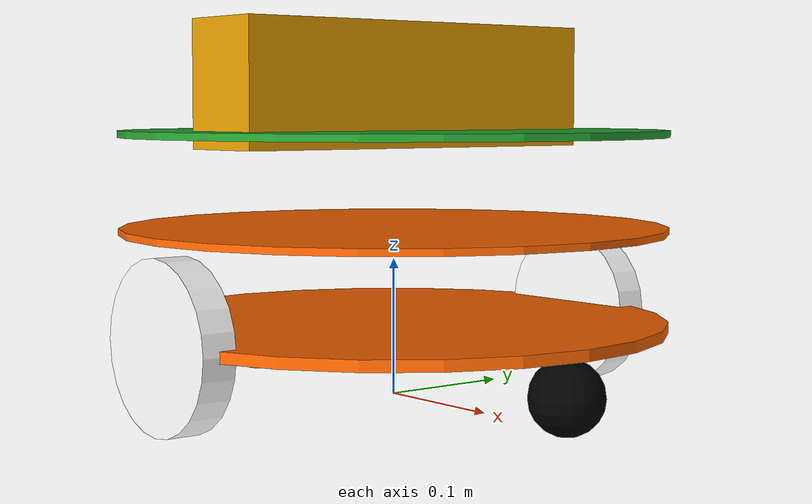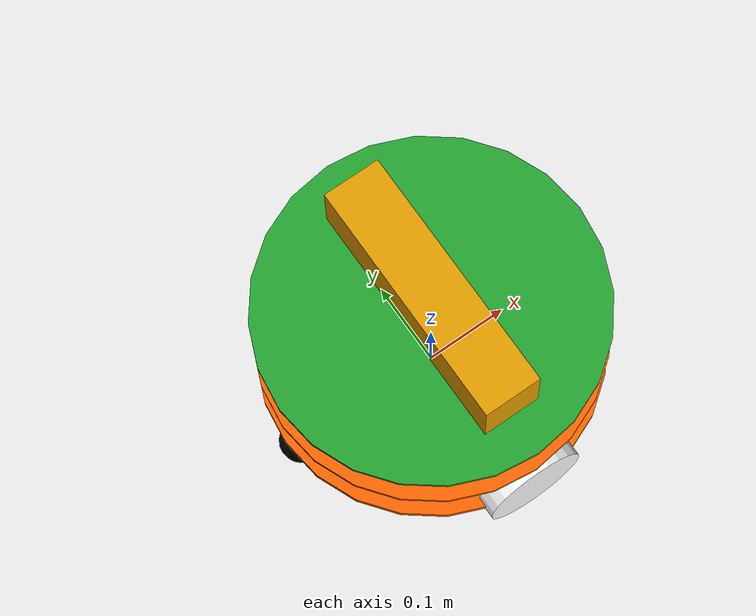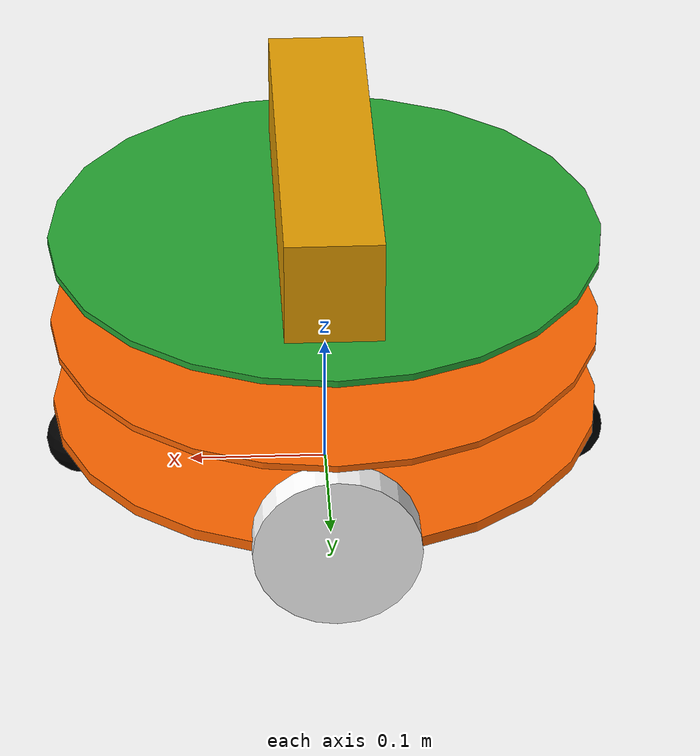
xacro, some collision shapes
<?xml version="1.0"?>
<robot name="arm" xmlns:xacro="http://www.ros.org/wiki/xacro">

    <xacro:include filename="$(find mbot_description)/urdf/xacro/mbot_base.xacro" />
    <xacro:include filename="$(find mbot_description)/urdf/xacro/sensors/kinect.xacro" />

    <xacro:property name="kinect_offset_x" value="0.00" />
    <xacro:property name="kinect_offset_y" value="0" />
    <xacro:property name="kinect_offset_z" value="0.035" />

    <mbot_base/>

<!-- Kinect -->
 <joint name="kinect_frame_joint" type="fixed">
  <origin xyz="${kinect_offset_x} ${kinect_offset_y} ${kinect_offset_z}" rpy="0 0 0" />
  <parent link="plate_2_link"/>
  <child link="camera_link"/>
  </joint>
  <xacro:kinect_camera prefix="camera"/>

</robot>

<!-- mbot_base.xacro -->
<robot name="mbot" xmlns:xacro="http://www.ros.org/wiki/xacro">

    <!-- PROPERTY LIST -->
    <xacro:property name="M_PI" value="3.1415926"/>
    <xacro:property name="base_radius" value="0.20"/>
    <xacro:property name="base_length" value="0.008"/>

    <xacro:property name="wheel_radius" value="0.06"/>
    <xacro:property name="wheel_length" value="0.025"/>
    <xacro:property name="wheel_joint_y" value="0.19"/>
    <xacro:property name="wheel_joint_z" value="0.000"/>

    <xacro:property name="caster_radius" value="0.026"/> <!-- wheel_radius - ( base_length/2 - wheel_joint_z) -->
    <xacro:property name="caster_joint_x" value="0.18"/>
    <xacro:property name="plate_height" value="0.07"/>
    <xacro:property name="base_link_radius" value="0.20"/>
 	<xacro:property name="base_link_length" value="0.005"/>

	<xacro:property name="motor_radius" value="0.02"/>
    	<xacro:property name="motor_length" value="0.08"/>
         	<xacro:property name="motor_x" value="-0.055"/>
    	<xacro:property name="motor_y" value="0.075"/>
            	<xacro:property name="standoff_x" value="0.12"/>
    	<xacro:property name="standoff_y" value="0.10"/>
        <xacro:property name="x_loc" value="0"/>
        <xacro:property name="y_loc" value="0"/>
        <xacro:property name="z_loc" value="0"/>
           	<xacro:property name="plate_height" value="0.07"/>

    <!-- Defining the colors used in this robot -->
    <material name="yellow">
        <color rgba="1 0.4 0 1"/>
    </material>
    <material name="black">
        <color rgba="0 0 0 0.95"/>
    </material>
    <material name="gray">
        <color rgba="0.75 0.75 0.75 1"/>
    </material>

    <!-- Macro for robot wheel -->
    <xacro:macro name="wheel" params="prefix reflect">
        <joint name="${prefix}_wheel_joint" type="continuous">
            <origin xyz="0 ${reflect*wheel_joint_y} ${-wheel_joint_z}" rpy="0 0 0"/>
            <parent link="base_link"/>
            <child link="${prefix}_wheel_link"/>
            <axis xyz="0 1 0"/>
        </joint>

        <link name="${prefix}_wheel_link">
            	<visual>
                <origin xyz="0 0 0" rpy="${M_PI/2} 0 0" />
                <geometry>
                    <cylinder radius="${wheel_radius}" length = "${wheel_length}"/>
                </geometry>
                <material name="gray">
                    <color rgba="1 1 1 0.9"/>
                </material>
            </visual>
	<collision>
                <origin xyz="0 0 0" rpy="${M_PI/2} 0 0" />
                <geometry>
                    <cylinder radius="${wheel_radius}" length = "${wheel_length}"/>
                </geometry>
            </collision>
        </link>
    </xacro:macro>

    <!-- Macro for robot caster -->
    <xacro:macro name="caster" params="prefix reflect">
        <joint name="${prefix}_caster_joint" type="continuous">
            <origin xyz="${reflect*caster_joint_x} 0 ${-(base_length/2 + caster_radius)}" rpy="0 0 0"/>
            <parent link="base_link"/>
            <child link="${prefix}_caster_link"/>
            <axis xyz="0 1 0"/>
        </joint>

        <link name="${prefix}_caster_link">
            <visual>
                <origin xyz="0 0 0" rpy="0 0 0"/>
                <geometry>
                    <sphere radius="${caster_radius}" />
                </geometry>
                <material name="black" />
            </visual>
        </link>
    </xacro:macro>

    <xacro:macro name="mbot_base">
        <link name="base_footprint">
            <visual>
                <origin xyz="0 0 0" rpy="0 0 0" />
                <geometry>
                    <box size="0.001 0.001 0.001" />
                </geometry>
            </visual>
        </link>

        <joint name="base_footprint_joint" type="fixed">
            <origin xyz="0 0 ${ caster_radius*2}" rpy="0 0 0" />
            <parent link="base_footprint"/>
            <child link="base_link" />
        </joint>

        <link name="base_link">
            <visual>
                <origin xyz=" 0 0 0" rpy="0 0 0" />
                <geometry>
                    <cylinder length="${base_length}" radius="${base_radius}"/>
                </geometry>
                <material name="yellow" />
            </visual>
        </link>

        <joint name="plate_1_joint" type="fixed">
            <origin xyz="0 0 ${plate_height}" rpy="0 0 0" />
            <parent link="base_link"/>
            <child link="plate_1_link" />
        </joint>
	<link name="plate_1_link">
            <inertial>
                <mass value="0.1" />
                <origin xyz="0 0 0" />
                <inertia ixx="0.01" ixy="0.0" ixz="0.0"
                         iyy="0.01" iyz="0.0" izz="0.01" />
            </inertial>
	<visual>
                <origin xyz=" 0 0 0 " rpy="0 0 0" />
                <geometry>
                    <cylinder length="${base_link_length}" radius="${base_link_radius}"/>
                </geometry>
                <material name="yellow"/>
            </visual>
	<collision>
                <origin xyz="0.0 0.0 0.0" rpy="0 0 0" />
                <geometry>
                    <cylinder length="${base_link_length}" radius="${base_link_radius}"/>
                </geometry>
            </collision>
        </link>

	<joint name="plate_2_joint" type="fixed">
            <origin xyz="0 0 ${plate_height}" rpy="0 0 0" />
            <parent link="plate_1_link"/>
            <child link="plate_2_link" />
        </joint>
	<link name="plate_2_link">
            <inertial>
                <mass value="0.01" />
                <origin xyz="0 0 0" />
                <inertia ixx="0.001" ixy="0.0" ixz="0.0"
                         iyy="0.001" iyz="0.0" izz="0.001" />
            </inertial>
	<visual>
                <origin xyz=" 0 0 0 " rpy="0 0 0" />
                <geometry>
                    <cylinder length="${base_link_length}" radius="${base_link_radius}"/>
                </geometry>
                <material name="Green" />
            </visual>
	<collision>
                <origin xyz="0.0 0.0 0.0" rpy="0 0 0" />
                <geometry>
                    <cylinder length="${base_link_length}" radius="${base_link_radius}"/>
                </geometry>
            </collision>
        </link>

        <wheel prefix="left" reflect="-1"/>
        <wheel prefix="right" reflect="1"/>

        <caster prefix="front" reflect="-1"/>
        <caster prefix="back" reflect="1"/>
    </xacro:macro>
</robot>

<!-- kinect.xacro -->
<robot xmlns:xacro="http://www.ros.org/wiki/xacro" name="kinect_camera">

	<xacro:macro name="kinect_camera" params="prefix:=camera">
  <link name="${prefix}_link">
   <origin xyz="0 0 0" rpy="0 0 0"/>
   <visual>
    <origin xyz="0 0 0" rpy="0 0 ${M_PI/2}"/>
    <geometry>
     <mesh filename="package://mrobot_description/meshes/kinect.dae" />
    </geometry>
   </visual>
   <collision>
    <geometry>
     <box size="0.07 0.3 0.09"/>
    </geometry>
   </collision>
  </link>
  <joint name="${prefix}_optical_joint" type="fixed">
   <origin xyz="0 0 0" rpy="-1.5708 0 -1.5708"/>
   <parent link="${prefix}_link"/>
   <child link="${prefix}_frame_optical"/>
  </joint>
<link name="${prefix}_frame_optical"/>
     </xacro:macro>
</robot>
